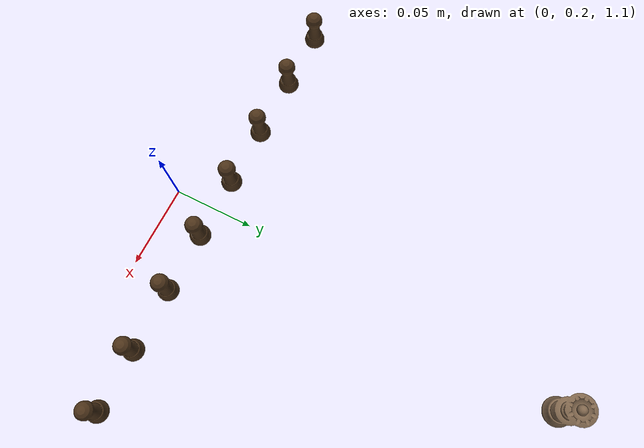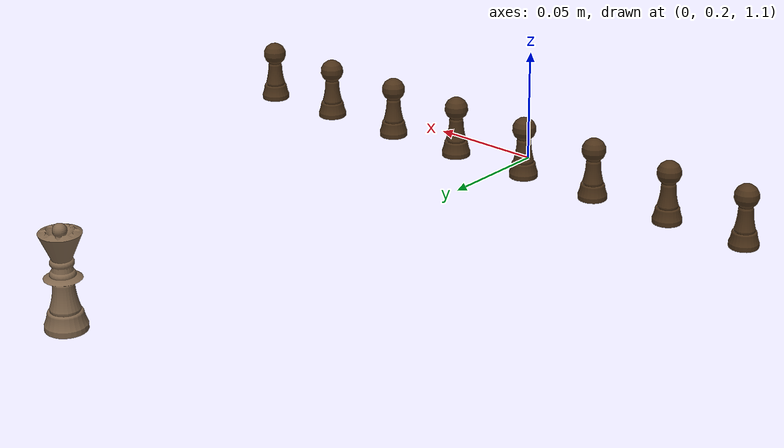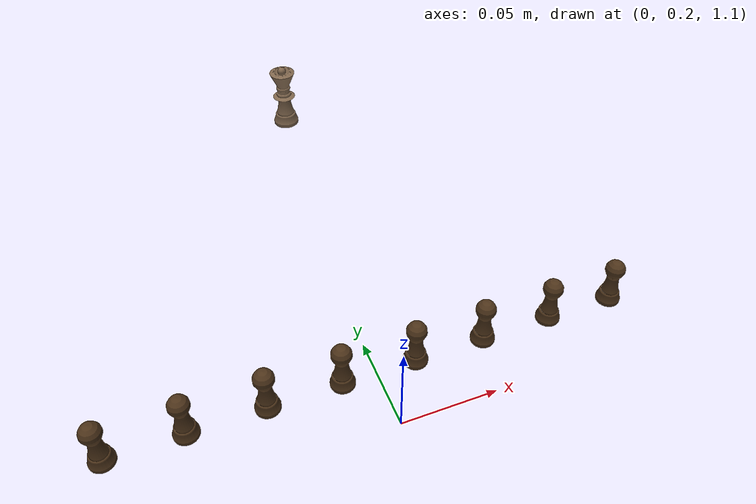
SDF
<sdf version="1.6">
 <world name="default">
  <model name="ground_plane">
   <static>1</static>
   <link name="link">
    <collision name="collision">
     <geometry><plane><normal>0 0 1</normal><size>100 100</size></plane></geometry>
     <surface>
      <contact><collide_bitmask>65535</collide_bitmask></contact>
      <friction><ode><mu>100</mu><mu2>50</mu2></ode></friction>
     </surface>
    </collision>
    <visual name="visual">
     <cast_shadows>0</cast_shadows>
     <geometry><plane><normal>0 0 1</normal><size>100 100</size></plane></geometry>
     <material>
      <script><uri>file://media/materials/scripts/gazebo.material</uri><name>Gazebo/Grey</name></script>
     </material>
    </visual>
   </link>
  </model>
  <model name="queen_white0">
   <static>0</static>
   <link name="link_0">
    <inertial>
     <mass>0.01</mass>
     <inertia><ixx>1e-06</ixx><ixy>0</ixy><ixz>0</ixz><iyy>1e-06</iyy><iyz>0</iyz><izz>5e-07</izz></inertia>
    </inertial>
    <kinematic>1</kinematic>
    <visual name="visual">
     <geometry><mesh><uri>model://queen_white/meshes/queen.dae</uri><scale>1 1 1</scale></mesh></geometry>
     <material>
      <lighting>1</lighting>
      <script><uri>file://media/materials/scripts/gazebo.material</uri><name>Gazebo/Grey</name></script>
      <shader type="vertex"><normal_map>__default__</normal_map></shader>
      <ambient>1 0.894 0.71 1</ambient>
      <diffuse>0.5 0.4 0.3 1</diffuse>
      <specular>0.01 0.01 0.01 1</specular>
      <emissive>0 0 0 1</emissive>
     </material>
    </visual>
    <collision name="collision">
     <pose>0 0 0.015 0 -0 0</pose>
     <geometry><cylinder><radius>0.01</radius><length>0.03</length></cylinder></geometry>
     <surface>
      <friction><ode><mu>1</mu><mu2>1</mu2></ode></friction>
      <contact><ode><kp>1e+07</kp><kd>1</kd><max_vel>0.001</max_vel><min_depth>0.1</min_depth></ode></contact>
     </surface>
    </collision>
    <pose>0.019 0.453 1.105 0 -0 0</pose>
   </link>
  </model>
  <model name="pawn_black0">
   <static>0</static>
   <link name="link_0">
    <inertial>
     <mass>0.01</mass>
     <inertia><ixx>1e-06</ixx><ixy>0</ixy><ixz>0</ixz><iyy>1e-06</iyy><iyz>0</iyz><izz>5e-07</izz></inertia>
    </inertial>
    <kinematic>1</kinematic>
    <visual name="visual">
     <geometry><mesh><uri>model://pawn_black/meshes/pawn.dae</uri><scale>1 1 1</scale></mesh></geometry>
     <material>
      <lighting>1</lighting>
      <script><uri>file://media/materials/scripts/gazebo.material</uri><name>Gazebo/Grey</name></script>
      <shader type="vertex"><normal_map>__default__</normal_map></shader>
      <ambient>0.34 0.17 0.07 1</ambient>
      <diffuse>0.3 0.2 0.1 1</diffuse>
      <specular>0.01 0.01 0.01 1</specular>
      <emissive>0 0 0 1</emissive>
     </material>
    </visual>
    <collision name="collision">
     <pose>0 0 0.015 0 -0 0</pose>
     <geometry><cylinder><radius>0.01</radius><length>0.03</length></cylinder></geometry>
     <surface>
      <friction><ode><mu>1</mu><mu2>1</mu2></ode></friction>
      <contact><ode><kp>1e+07</kp><kd>1</kd><max_vel>0.001</max_vel><min_depth>0.1</min_depth></ode></contact>
     </surface>
    </collision>
    <pose>0.131 0.228 1.105 0 -0 0</pose>
   </link>
  </model>
  <model name="pawn_black1">
   <static>0</static>
   <link name="link_0">
    <inertial>
     <mass>0.01</mass>
     <inertia><ixx>1e-06</ixx><ixy>0</ixy><ixz>0</ixz><iyy>1e-06</iyy><iyz>0</iyz><izz>5e-07</izz></inertia>
    </inertial>
    <kinematic>1</kinematic>
    <visual name="visual">
     <geometry><mesh><uri>model://pawn_black/meshes/pawn.dae</uri><scale>1 1 1</scale></mesh></geometry>
     <material>
      <lighting>1</lighting>
      <script><uri>file://media/materials/scripts/gazebo.material</uri><name>Gazebo/Grey</name></script>
      <shader type="vertex"><normal_map>__default__</normal_map></shader>
      <ambient>0.34 0.17 0.07 1</ambient>
      <diffuse>0.3 0.2 0.1 1</diffuse>
      <specular>0.01 0.01 0.01 1</specular>
      <emissive>0 0 0 1</emissive>
     </material>
    </visual>
    <collision name="collision">
     <pose>0 0 0.015 0 -0 0</pose>
     <geometry><cylinder><radius>0.01</radius><length>0.03</length></cylinder></geometry>
     <surface>
      <friction><ode><mu>1</mu><mu2>1</mu2></ode></friction>
      <contact><ode><kp>1e+07</kp><kd>1</kd><max_vel>0.001</max_vel><min_depth>0.1</min_depth></ode></contact>
     </surface>
    </collision>
    <pose>0.094 0.228 1.105 0 -0 0</pose>
   </link>
  </model>
  <model name="pawn_black2">
   <static>0</static>
   <link name="link_0">
    <inertial>
     <mass>0.01</mass>
     <inertia><ixx>1e-06</ixx><ixy>0</ixy><ixz>0</ixz><iyy>1e-06</iyy><iyz>0</iyz><izz>5e-07</izz></inertia>
    </inertial>
    <kinematic>1</kinematic>
    <visual name="visual">
     <geometry><mesh><uri>model://pawn_black/meshes/pawn.dae</uri><scale>1 1 1</scale></mesh></geometry>
     <material>
      <lighting>1</lighting>
      <script><uri>file://media/materials/scripts/gazebo.material</uri><name>Gazebo/Grey</name></script>
      <shader type="vertex"><normal_map>__default__</normal_map></shader>
      <ambient>0.34 0.17 0.07 1</ambient>
      <diffuse>0.3 0.2 0.1 1</diffuse>
      <specular>0.01 0.01 0.01 1</specular>
      <emissive>0 0 0 1</emissive>
     </material>
    </visual>
    <collision name="collision">
     <pose>0 0 0.015 0 -0 0</pose>
     <geometry><cylinder><radius>0.01</radius><length>0.03</length></cylinder></geometry>
     <surface>
      <friction><ode><mu>1</mu><mu2>1</mu2></ode></friction>
      <contact><ode><kp>1e+07</kp><kd>1</kd><max_vel>0.001</max_vel><min_depth>0.1</min_depth></ode></contact>
     </surface>
    </collision>
    <pose>0.056 0.228 1.105 0 -0 0</pose>
   </link>
  </model>
  <model name="pawn_black3">
   <static>0</static>
   <link name="link_0">
    <inertial>
     <mass>0.01</mass>
     <inertia><ixx>1e-06</ixx><ixy>0</ixy><ixz>0</ixz><iyy>1e-06</iyy><iyz>0</iyz><izz>5e-07</izz></inertia>
    </inertial>
    <kinematic>1</kinematic>
    <visual name="visual">
     <geometry><mesh><uri>model://pawn_black/meshes/pawn.dae</uri><scale>1 1 1</scale></mesh></geometry>
     <material>
      <lighting>1</lighting>
      <script><uri>file://media/materials/scripts/gazebo.material</uri><name>Gazebo/Grey</name></script>
      <shader type="vertex"><normal_map>__default__</normal_map></shader>
      <ambient>0.34 0.17 0.07 1</ambient>
      <diffuse>0.3 0.2 0.1 1</diffuse>
      <specular>0.01 0.01 0.01 1</specular>
      <emissive>0 0 0 1</emissive>
     </material>
    </visual>
    <collision name="collision">
     <pose>0 0 0.015 0 -0 0</pose>
     <geometry><cylinder><radius>0.01</radius><length>0.03</length></cylinder></geometry>
     <surface>
      <friction><ode><mu>1</mu><mu2>1</mu2></ode></friction>
      <contact><ode><kp>1e+07</kp><kd>1</kd><max_vel>0.001</max_vel><min_depth>0.1</min_depth></ode></contact>
     </surface>
    </collision>
    <pose>0.019 0.228 1.105 0 -0 0</pose>
   </link>
  </model>
  <model name="pawn_black4">
   <static>0</static>
   <link name="link_0">
    <inertial>
     <mass>0.01</mass>
     <inertia><ixx>1e-06</ixx><ixy>0</ixy><ixz>0</ixz><iyy>1e-06</iyy><iyz>0</iyz><izz>5e-07</izz></inertia>
    </inertial>
    <kinematic>1</kinematic>
    <visual name="visual">
     <geometry><mesh><uri>model://pawn_black/meshes/pawn.dae</uri><scale>1 1 1</scale></mesh></geometry>
     <material>
      <lighting>1</lighting>
      <script><uri>file://media/materials/scripts/gazebo.material</uri><name>Gazebo/Grey</name></script>
      <shader type="vertex"><normal_map>__default__</normal_map></shader>
      <ambient>0.34 0.17 0.07 1</ambient>
      <diffuse>0.3 0.2 0.1 1</diffuse>
      <specular>0.01 0.01 0.01 1</specular>
      <emissive>0 0 0 1</emissive>
     </material>
    </visual>
    <collision name="collision">
     <pose>0 0 0.015 0 -0 0</pose>
     <geometry><cylinder><radius>0.01</radius><length>0.03</length></cylinder></geometry>
     <surface>
      <friction><ode><mu>1</mu><mu2>1</mu2></ode></friction>
      <contact><ode><kp>1e+07</kp><kd>1</kd><max_vel>0.001</max_vel><min_depth>0.1</min_depth></ode></contact>
     </surface>
    </collision>
    <pose>-0.019 0.228 1.105 0 -0 0</pose>
   </link>
  </model>
  <model name="pawn_black5">
   <static>0</static>
   <link name="link_0">
    <inertial>
     <mass>0.01</mass>
     <inertia><ixx>1e-06</ixx><ixy>0</ixy><ixz>0</ixz><iyy>1e-06</iyy><iyz>0</iyz><izz>5e-07</izz></inertia>
    </inertial>
    <kinematic>1</kinematic>
    <visual name="visual">
     <geometry><mesh><uri>model://pawn_black/meshes/pawn.dae</uri><scale>1 1 1</scale></mesh></geometry>
     <material>
      <lighting>1</lighting>
      <script><uri>file://media/materials/scripts/gazebo.material</uri><name>Gazebo/Grey</name></script>
      <shader type="vertex"><normal_map>__default__</normal_map></shader>
      <ambient>0.34 0.17 0.07 1</ambient>
      <diffuse>0.3 0.2 0.1 1</diffuse>
      <specular>0.01 0.01 0.01 1</specular>
      <emissive>0 0 0 1</emissive>
     </material>
    </visual>
    <collision name="collision">
     <pose>0 0 0.015 0 -0 0</pose>
     <geometry><cylinder><radius>0.01</radius><length>0.03</length></cylinder></geometry>
     <surface>
      <friction><ode><mu>1</mu><mu2>1</mu2></ode></friction>
      <contact><ode><kp>1e+07</kp><kd>1</kd><max_vel>0.001</max_vel><min_depth>0.1</min_depth></ode></contact>
     </surface>
    </collision>
    <pose>-0.056 0.228 1.105 0 -0 0</pose>
   </link>
  </model>
  <model name="pawn_black6">
   <static>0</static>
   <link name="link_0">
    <inertial>
     <mass>0.01</mass>
     <inertia><ixx>1e-06</ixx><ixy>0</ixy><ixz>0</ixz><iyy>1e-06</iyy><iyz>0</iyz><izz>5e-07</izz></inertia>
    </inertial>
    <kinematic>1</kinematic>
    <visual name="visual">
     <geometry><mesh><uri>model://pawn_black/meshes/pawn.dae</uri><scale>1 1 1</scale></mesh></geometry>
     <material>
      <lighting>1</lighting>
      <script><uri>file://media/materials/scripts/gazebo.material</uri><name>Gazebo/Grey</name></script>
      <shader type="vertex"><normal_map>__default__</normal_map></shader>
      <ambient>0.34 0.17 0.07 1</ambient>
      <diffuse>0.3 0.2 0.1 1</diffuse>
      <specular>0.01 0.01 0.01 1</specular>
      <emissive>0 0 0 1</emissive>
     </material>
    </visual>
    <collision name="collision">
     <pose>0 0 0.015 0 -0 0</pose>
     <geometry><cylinder><radius>0.01</radius><length>0.03</length></cylinder></geometry>
     <surface>
      <friction><ode><mu>1</mu><mu2>1</mu2></ode></friction>
      <contact><ode><kp>1e+07</kp><kd>1</kd><max_vel>0.001</max_vel><min_depth>0.1</min_depth></ode></contact>
     </surface>
    </collision>
    <pose>-0.094 0.228 1.105 0 -0 0</pose>
   </link>
  </model>
  <model name="pawn_black7">
   <static>0</static>
   <link name="link_0">
    <inertial>
     <mass>0.01</mass>
     <inertia><ixx>1e-06</ixx><ixy>0</ixy><ixz>0</ixz><iyy>1e-06</iyy><iyz>0</iyz><izz>5e-07</izz></inertia>
    </inertial>
    <kinematic>1</kinematic>
    <visual name="visual">
     <geometry><mesh><uri>model://pawn_black/meshes/pawn.dae</uri><scale>1 1 1</scale></mesh></geometry>
     <material>
      <lighting>1</lighting>
      <script><uri>file://media/materials/scripts/gazebo.material</uri><name>Gazebo/Grey</name></script>
      <shader type="vertex"><normal_map>__default__</normal_map></shader>
      <ambient>0.34 0.17 0.07 1</ambient>
      <diffuse>0.3 0.2 0.1 1</diffuse>
      <specular>0.01 0.01 0.01 1</specular>
      <emissive>0 0 0 1</emissive>
     </material>
    </visual>
    <collision name="collision">
     <pose>0 0 0.015 0 -0 0</pose>
     <geometry><cylinder><radius>0.01</radius><length>0.03</length></cylinder></geometry>
     <surface>
      <friction><ode><mu>1</mu><mu2>1</mu2></ode></friction>
      <contact><ode><kp>1e+07</kp><kd>1</kd><max_vel>0.001</max_vel><min_depth>0.1</min_depth></ode></contact>
     </surface>
    </collision>
    <pose>-0.131 0.228 1.105 0 -0 0</pose>
   </link>
  </model>
 </world>
</sdf>
